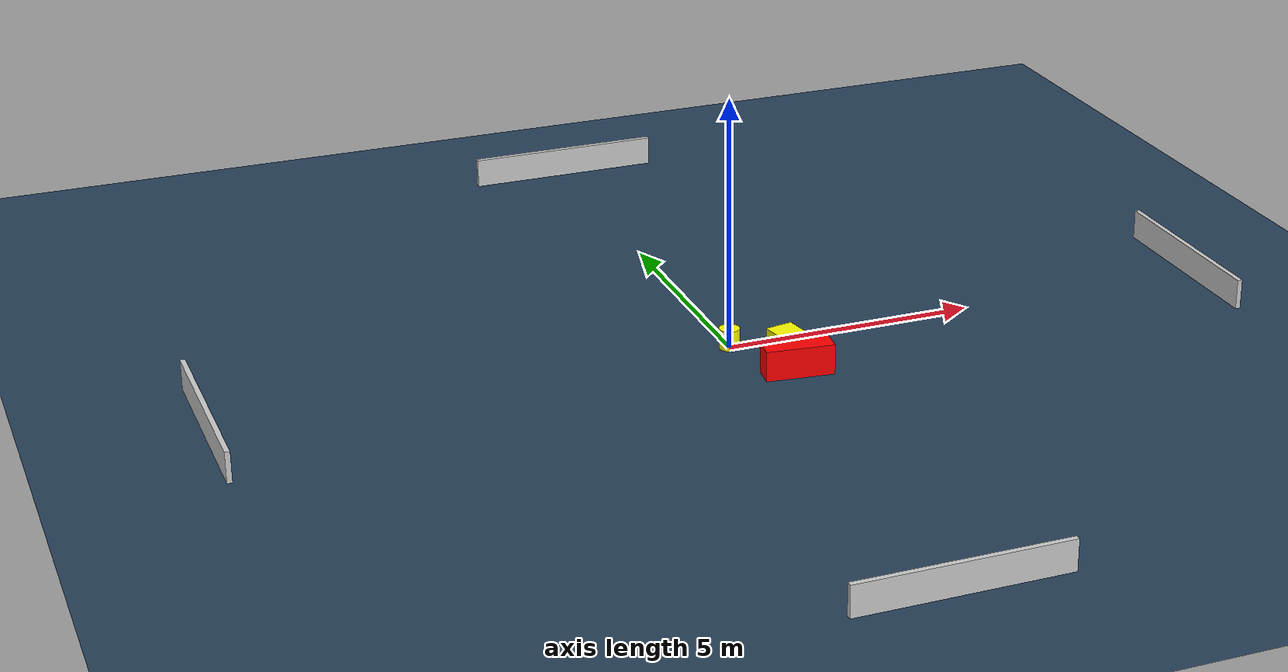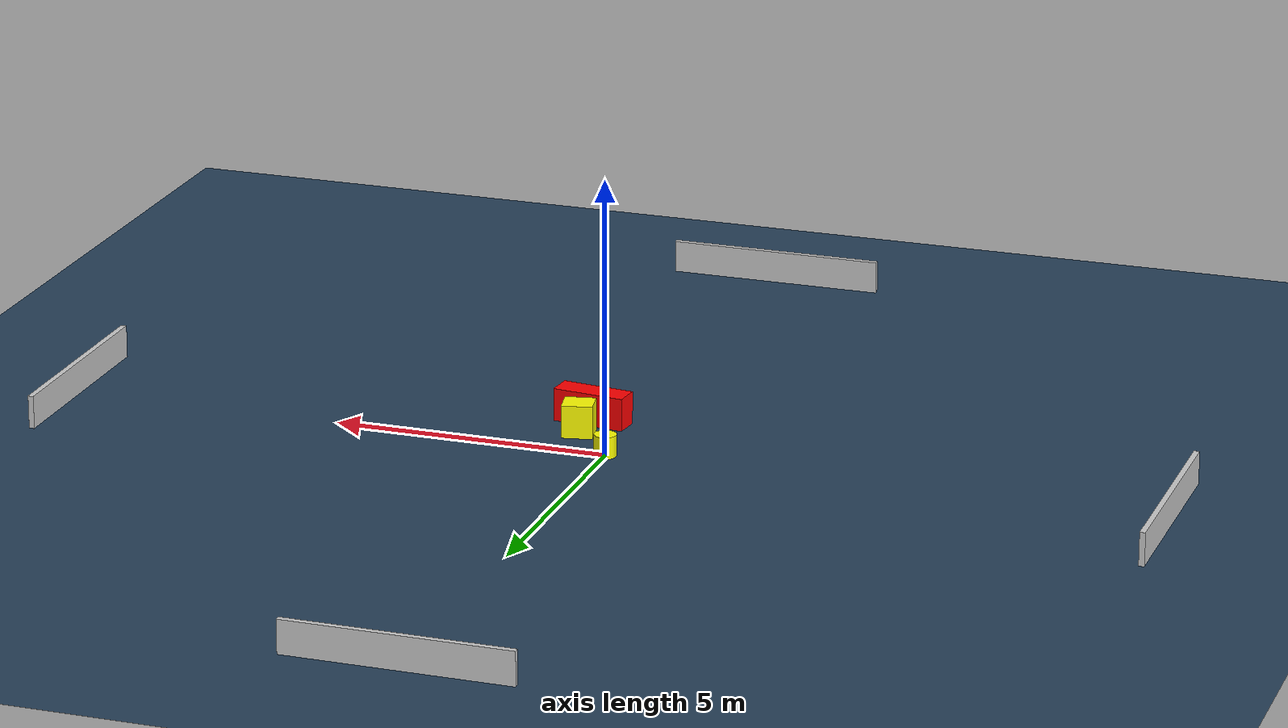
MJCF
<?xml version="1.0" ?>
<mujoco model="generated_environment">
  <option timestep="0.01" integrator="RK4" cone="elliptic"/>
  <default>
    <geom density="1"/>
  </default>
  <asset>
    <texture builtin="gradient" height="3072" name="skybox" rgb1="0.3 0.5 0.7" rgb2="0 0 0" type="skybox" width="512"/>
    <texture builtin="checker" height="300" name="groundplane" rgb1="0.2 0.3 0.4" rgb2="0.1 0.2 0.3" type="2d" width="300"/>
    <material name="groundplane" reflectance="0.2" texrepeat="5 5" texture="groundplane"/>
  </asset>
  <worldbody>
    <light dir="0 0 -1" directional="true" pos="0 0 1.5"/>
    <geom condim="3" friction="0.5 0.005 0.001" material="groundplane" name="floor" pos="0 0 0" size="0 0 0.05" type="plane"/>
    <body name="walls">
      <geom name="wall_1" condim="4" pos="-10.0 0.0 0.3" rgba="0.800000011920929 0.800000011920929 0.800000011920929 1.0" size="0.05 2.0 0.3" type="box"/>
      <geom name="wall_2" condim="4" pos="10.0 0.0 0.3" rgba="0.800000011920929 0.800000011920929 0.800000011920929 1.0" size="0.05 2.0 0.3" type="box"/>
      <geom name="wall_3" condim="4" pos="0.0 -10.0 0.3" rgba="0.800000011920929 0.800000011920929 0.800000011920929 1.0" size="2.0 0.05 0.3" type="box"/>
      <geom name="wall_4" condim="4" pos="0.0 10.0 0.3" rgba="0.800000011920929 0.800000011920929 0.800000011920929 1.0" size="2.0 0.05 0.3" type="box"/>
    </body>
    <body name="robot">
      <joint name="joint_x" type="slide" pos="0 0 0" axis="1 0 0"/>
      <joint name="joint_y" type="slide" pos="0 0 0" axis="0 1 0"/>
      <geom name="robot" type="cylinder" pos="0.0 0.0 0.2" size="0.2 0.2 0.0" mass="5.0" friction="1.0 0.005 0.0001" condim="4" rgba="1.0 1.0 0.0 1.0"/>
    </body>
    <body name="obstacle_1_movable">
      <geom name="obstacle_1_movable" condim="4" pos="0.7919347946873299 -0.8711971108152503 0.3" euler="0 0 280.8486202146136" friction="0.0 0.005 0.001" rgba="1.0 1.0 0.0 1.0" size="0.24488195547463096 0.2773448070892287 0.3" type="box" mass="0.1"/>
      <joint type="free"/>
    </body>
    <body name="obstacle_2_static">
      <geom name="obstacle_2_static" condim="4" pos="0.7538707740569649 -1.5307605196230152 0.3" euler="0 0 353.40847417413585" friction="0.0 0.005 0.001" rgba="1.0 0.0 0.0 1.0" size="0.6634903600770339 0.22725865287755587 0.3" type="box"/>
    </body>
  </worldbody>
  <actuator>
    <motor name="actuator_x" joint="joint_x" gear="1" ctrlrange="-1 1"/>
    <motor name="actuator_y" joint="joint_y" gear="1" ctrlrange="-1 1"/>
  </actuator>
</mujoco>
